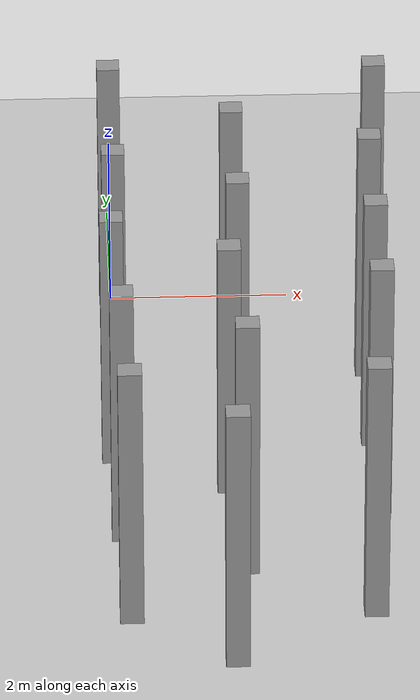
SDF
<sdf version="1.6">
 <world name="default">
  <model name="ground_plane">
   <static>1</static>
   <link name="link">
    <collision name="collision">
     <geometry><plane><normal>0 0 1</normal><size>100 100</size></plane></geometry>
     <surface><friction><ode><mu>100</mu><mu2>50</mu2></ode></friction></surface>
    </collision>
    <visual name="visual">
     <cast_shadows>0</cast_shadows>
     <geometry><plane><normal>0 0 1</normal><size>100 100</size></plane></geometry>
     <material>
      <script><uri>file://media/materials/scripts/gazebo.material</uri><name>Gazebo/Grey</name></script>
     </material>
    </visual>
   </link>
  </model>
  <model name="box_2">
   <link name="link">
    <pose>0 0 1 0 -0 0</pose>
    <inertial>
     <mass>1</mass>
     <inertia><ixx>5.16667</ixx><ixy>0</ixy><ixz>0</ixz><iyy>5.16667</iyy><iyz>0</iyz><izz>5.16667</izz></inertia>
     <pose>0 0 1 0 -0 0</pose>
    </inertial>
    <visual name="ModelPreview_4::link::visual_1">
     <geometry><box><size>0.25 0.25 3</size></box></geometry>
     <material>
      <script><name>Gazebo/Grey</name><uri>file://media/materials/scripts/gazebo.material</uri></script>
      <ambient>0.3 0.3 0.3 1</ambient>
      <diffuse>0.7 0.7 0.7 1</diffuse>
      <specular>0.01 0.01 0.01 1</specular>
      <emissive>0 0 0 1</emissive>
      <shader type="vertex"><normal_map>__default__</normal_map></shader>
     </material>
    </visual>
    <visual name="visual">
     <geometry><box><size>0.25 0.25 3</size></box></geometry>
     <material>
      <script><name>Gazebo/Grey</name><uri>file://media/materials/scripts/gazebo.material</uri></script>
      <ambient>0.3 0.3 0.3 1</ambient>
      <diffuse>0.7 0.7 0.7 1</diffuse>
      <specular>0.01 0.01 0.01 1</specular>
      <emissive>0 0 0 1</emissive>
      <shader type="vertex"><normal_map>__default__</normal_map></shader>
     </material>
    </visual>
    <collision name="collision">
     <geometry><box><size>0.25 0.25 3</size></box></geometry>
     <surface>
      <friction>
       <ode><mu>1</mu><mu2>1</mu2><fdir1>0 0 0</fdir1><slip1>0</slip1><slip2>0</slip2></ode>
       <torsional>
        <coefficient>1</coefficient>
        <patch_radius>0</patch_radius>
        <surface_radius>0</surface_radius>
        <use_patch_radius>1</use_patch_radius>
        <ode><slip>0</slip></ode>
       </torsional>
      </friction>
      <bounce><restitution_coefficient>0</restitution_coefficient><threshold>1e+06</threshold></bounce>
      <contact>
       <collide_without_contact>0</collide_without_contact>
       <collide_without_contact_bitmask>1</collide_without_contact_bitmask>
       <collide_bitmask>1</collide_bitmask>
       <ode>
        <soft_cfm>0</soft_cfm>
        <soft_erp>0.2</soft_erp>
        <kp>1e+13</kp>
        <kd>1</kd>
        <max_vel>0.01</max_vel>
        <min_depth>0</min_depth>
       </ode>
       <bullet>
        <split_impulse>1</split_impulse>
        <split_impulse_penetration_threshold>-0.01</split_impulse_penetration_threshold>
        <soft_cfm>0</soft_cfm>
        <soft_erp>0.2</soft_erp>
        <kp>1e+13</kp>
        <kd>1</kd>
       </bullet>
      </contact>
     </surface>
    </collision>
   </link>
   <static>0</static>
   <pose>0.001306 -0.012782 0.5 0 0 -0.000121</pose>
  </model>
  <model name="box_2_0">
   <link name="link">
    <pose>0 0 1 0 -0 0</pose>
    <inertial>
     <mass>1</mass>
     <inertia><ixx>5.16667</ixx><ixy>0</ixy><ixz>0</ixz><iyy>5.16667</iyy><iyz>0</iyz><izz>5.16667</izz></inertia>
     <pose>0 0 1 0 -0 0</pose>
    </inertial>
    <visual name="ModelPreview_4::link::visual_1">
     <geometry><box><size>0.25 0.25 3</size></box></geometry>
     <material>
      <script><name>Gazebo/Grey</name><uri>file://media/materials/scripts/gazebo.material</uri></script>
      <ambient>0.3 0.3 0.3 1</ambient>
      <diffuse>0.7 0.7 0.7 1</diffuse>
      <specular>0.01 0.01 0.01 1</specular>
      <emissive>0 0 0 1</emissive>
      <shader type="vertex"><normal_map>__default__</normal_map></shader>
     </material>
    </visual>
    <visual name="visual">
     <geometry><box><size>0.25 0.25 3</size></box></geometry>
     <material>
      <script><name>Gazebo/Grey</name><uri>file://media/materials/scripts/gazebo.material</uri></script>
      <ambient>0.3 0.3 0.3 1</ambient>
      <diffuse>0.7 0.7 0.7 1</diffuse>
      <specular>0.01 0.01 0.01 1</specular>
      <emissive>0 0 0 1</emissive>
      <shader type="vertex"><normal_map>__default__</normal_map></shader>
     </material>
    </visual>
    <collision name="collision">
     <geometry><box><size>0.25 0.25 3</size></box></geometry>
     <surface>
      <friction>
       <ode><mu>1</mu><mu2>1</mu2><fdir1>0 0 0</fdir1><slip1>0</slip1><slip2>0</slip2></ode>
       <torsional>
        <coefficient>1</coefficient>
        <patch_radius>0</patch_radius>
        <surface_radius>0</surface_radius>
        <use_patch_radius>1</use_patch_radius>
        <ode><slip>0</slip></ode>
       </torsional>
      </friction>
      <bounce><restitution_coefficient>0</restitution_coefficient><threshold>1e+06</threshold></bounce>
      <contact>
       <collide_without_contact>0</collide_without_contact>
       <collide_without_contact_bitmask>1</collide_without_contact_bitmask>
       <collide_bitmask>1</collide_bitmask>
       <ode>
        <soft_cfm>0</soft_cfm>
        <soft_erp>0.2</soft_erp>
        <kp>1e+13</kp>
        <kd>1</kd>
        <max_vel>0.01</max_vel>
        <min_depth>0</min_depth>
       </ode>
       <bullet>
        <split_impulse>1</split_impulse>
        <split_impulse_penetration_threshold>-0.01</split_impulse_penetration_threshold>
        <soft_cfm>0</soft_cfm>
        <soft_erp>0.2</soft_erp>
        <kp>1e+13</kp>
        <kd>1</kd>
       </bullet>
      </contact>
     </surface>
    </collision>
   </link>
   <static>0</static>
   <pose>0.016184 -1.98397 0.5 -2e-06 -0 -0.000223</pose>
  </model>
  <model name="box_2_clone">
   <link name="link">
    <pose>0 0 1 0 -0 0</pose>
    <inertial>
     <mass>1</mass>
     <inertia><ixx>5.16667</ixx><ixy>0</ixy><ixz>0</ixz><iyy>5.16667</iyy><iyz>0</iyz><izz>5.16667</izz></inertia>
     <pose>0 0 1 0 -0 0</pose>
    </inertial>
    <visual name="ModelPreview_4::link::visual_1">
     <geometry><box><size>0.25 0.25 3</size></box></geometry>
     <material>
      <script><name>Gazebo/Grey</name><uri>file://media/materials/scripts/gazebo.material</uri></script>
      <ambient>0.3 0.3 0.3 1</ambient>
      <diffuse>0.7 0.7 0.7 1</diffuse>
      <specular>0.01 0.01 0.01 1</specular>
      <emissive>0 0 0 1</emissive>
      <shader type="vertex"><normal_map>__default__</normal_map></shader>
     </material>
    </visual>
    <visual name="visual">
     <geometry><box><size>0.25 0.25 3</size></box></geometry>
     <material>
      <script><name>Gazebo/Grey</name><uri>file://media/materials/scripts/gazebo.material</uri></script>
      <ambient>0.3 0.3 0.3 1</ambient>
      <diffuse>0.7 0.7 0.7 1</diffuse>
      <specular>0.01 0.01 0.01 1</specular>
      <emissive>0 0 0 1</emissive>
      <shader type="vertex"><normal_map>__default__</normal_map></shader>
     </material>
    </visual>
    <collision name="collision">
     <geometry><box><size>0.25 0.25 3</size></box></geometry>
     <surface>
      <friction>
       <ode><mu>1</mu><mu2>1</mu2><fdir1>0 0 0</fdir1><slip1>0</slip1><slip2>0</slip2></ode>
       <torsional>
        <coefficient>1</coefficient>
        <patch_radius>0</patch_radius>
        <surface_radius>0</surface_radius>
        <use_patch_radius>1</use_patch_radius>
        <ode><slip>0</slip></ode>
       </torsional>
      </friction>
      <bounce><restitution_coefficient>0</restitution_coefficient><threshold>1e+06</threshold></bounce>
      <contact>
       <collide_without_contact>0</collide_without_contact>
       <collide_without_contact_bitmask>1</collide_without_contact_bitmask>
       <collide_bitmask>1</collide_bitmask>
       <ode>
        <soft_cfm>0</soft_cfm>
        <soft_erp>0.2</soft_erp>
        <kp>1e+13</kp>
        <kd>1</kd>
        <max_vel>0.01</max_vel>
        <min_depth>0</min_depth>
       </ode>
       <bullet>
        <split_impulse>1</split_impulse>
        <split_impulse_penetration_threshold>-0.01</split_impulse_penetration_threshold>
        <soft_cfm>0</soft_cfm>
        <soft_erp>0.2</soft_erp>
        <kp>1e+13</kp>
        <kd>1</kd>
       </bullet>
      </contact>
     </surface>
    </collision>
   </link>
   <static>0</static>
   <pose>-0.030827 -3.47145 0.5 -2e-06 -0 -0.000164</pose>
  </model>
  <model name="box_2_clone_0">
   <link name="link">
    <pose>0 0 1 0 -0 0</pose>
    <inertial>
     <mass>1</mass>
     <inertia><ixx>5.16667</ixx><ixy>0</ixy><ixz>0</ixz><iyy>5.16667</iyy><iyz>0</iyz><izz>5.16667</izz></inertia>
     <pose>0 0 1 0 -0 0</pose>
    </inertial>
    <visual name="ModelPreview_4::link::visual_1">
     <geometry><box><size>0.25 0.25 3</size></box></geometry>
     <material>
      <script><name>Gazebo/Grey</name><uri>file://media/materials/scripts/gazebo.material</uri></script>
      <ambient>0.3 0.3 0.3 1</ambient>
      <diffuse>0.7 0.7 0.7 1</diffuse>
      <specular>0.01 0.01 0.01 1</specular>
      <emissive>0 0 0 1</emissive>
      <shader type="vertex"><normal_map>__default__</normal_map></shader>
     </material>
    </visual>
    <visual name="visual">
     <geometry><box><size>0.25 0.25 3</size></box></geometry>
     <material>
      <script><name>Gazebo/Grey</name><uri>file://media/materials/scripts/gazebo.material</uri></script>
      <ambient>0.3 0.3 0.3 1</ambient>
      <diffuse>0.7 0.7 0.7 1</diffuse>
      <specular>0.01 0.01 0.01 1</specular>
      <emissive>0 0 0 1</emissive>
      <shader type="vertex"><normal_map>__default__</normal_map></shader>
     </material>
    </visual>
    <collision name="collision">
     <geometry><box><size>0.25 0.25 3</size></box></geometry>
     <surface>
      <friction>
       <ode><mu>1</mu><mu2>1</mu2><fdir1>0 0 0</fdir1><slip1>0</slip1><slip2>0</slip2></ode>
       <torsional>
        <coefficient>1</coefficient>
        <patch_radius>0</patch_radius>
        <surface_radius>0</surface_radius>
        <use_patch_radius>1</use_patch_radius>
        <ode><slip>0</slip></ode>
       </torsional>
      </friction>
      <bounce><restitution_coefficient>0</restitution_coefficient><threshold>1e+06</threshold></bounce>
      <contact>
       <collide_without_contact>0</collide_without_contact>
       <collide_without_contact_bitmask>1</collide_without_contact_bitmask>
       <collide_bitmask>1</collide_bitmask>
       <ode>
        <soft_cfm>0</soft_cfm>
        <soft_erp>0.2</soft_erp>
        <kp>1e+13</kp>
        <kd>1</kd>
        <max_vel>0.01</max_vel>
        <min_depth>0</min_depth>
       </ode>
       <bullet>
        <split_impulse>1</split_impulse>
        <split_impulse_penetration_threshold>-0.01</split_impulse_penetration_threshold>
        <soft_cfm>0</soft_cfm>
        <soft_erp>0.2</soft_erp>
        <kp>1e+13</kp>
        <kd>1</kd>
       </bullet>
      </contact>
     </surface>
    </collision>
   </link>
   <static>0</static>
   <pose>0.044164 -5.06379 0.5 2e-06 -1e-06 -0.00013</pose>
  </model>
  <model name="box_2_clone_5">
   <link name="link">
    <pose>0 0 1 0 -0 0</pose>
    <inertial>
     <mass>1</mass>
     <inertia><ixx>5.16667</ixx><ixy>0</ixy><ixz>0</ixz><iyy>5.16667</iyy><iyz>0</iyz><izz>5.16667</izz></inertia>
     <pose>0 0 1 0 -0 0</pose>
    </inertial>
    <visual name="ModelPreview_4::link::visual_1">
     <geometry><box><size>0.25 0.25 3</size></box></geometry>
     <material>
      <script><name>Gazebo/Grey</name><uri>file://media/materials/scripts/gazebo.material</uri></script>
      <ambient>0.3 0.3 0.3 1</ambient>
      <diffuse>0.7 0.7 0.7 1</diffuse>
      <specular>0.01 0.01 0.01 1</specular>
      <emissive>0 0 0 1</emissive>
      <shader type="vertex"><normal_map>__default__</normal_map></shader>
     </material>
    </visual>
    <visual name="visual">
     <geometry><box><size>0.25 0.25 3</size></box></geometry>
     <material>
      <script><name>Gazebo/Grey</name><uri>file://media/materials/scripts/gazebo.material</uri></script>
      <ambient>0.3 0.3 0.3 1</ambient>
      <diffuse>0.7 0.7 0.7 1</diffuse>
      <specular>0.01 0.01 0.01 1</specular>
      <emissive>0 0 0 1</emissive>
      <shader type="vertex"><normal_map>__default__</normal_map></shader>
     </material>
    </visual>
    <collision name="collision">
     <geometry><box><size>0.25 0.25 3</size></box></geometry>
     <surface>
      <friction>
       <ode><mu>1</mu><mu2>1</mu2><fdir1>0 0 0</fdir1><slip1>0</slip1><slip2>0</slip2></ode>
       <torsional>
        <coefficient>1</coefficient>
        <patch_radius>0</patch_radius>
        <surface_radius>0</surface_radius>
        <use_patch_radius>1</use_patch_radius>
        <ode><slip>0</slip></ode>
       </torsional>
      </friction>
      <bounce><restitution_coefficient>0</restitution_coefficient><threshold>1e+06</threshold></bounce>
      <contact>
       <collide_without_contact>0</collide_without_contact>
       <collide_without_contact_bitmask>1</collide_without_contact_bitmask>
       <collide_bitmask>1</collide_bitmask>
       <ode>
        <soft_cfm>0</soft_cfm>
        <soft_erp>0.2</soft_erp>
        <kp>1e+13</kp>
        <kd>1</kd>
        <max_vel>0.01</max_vel>
        <min_depth>0</min_depth>
       </ode>
       <bullet>
        <split_impulse>1</split_impulse>
        <split_impulse_penetration_threshold>-0.01</split_impulse_penetration_threshold>
        <soft_cfm>0</soft_cfm>
        <soft_erp>0.2</soft_erp>
        <kp>1e+13</kp>
        <kd>1</kd>
       </bullet>
      </contact>
     </surface>
    </collision>
   </link>
   <static>0</static>
   <pose>0.096291 -6.6736 0.5 -2e-06 -1e-06 -9.9e-05</pose>
  </model>
  <model name="box_2_clone_1_clone_3">
   <link name="link">
    <pose>0 0 1 0 -0 0</pose>
    <inertial>
     <mass>1</mass>
     <inertia><ixx>5.16667</ixx><ixy>0</ixy><ixz>0</ixz><iyy>5.16667</iyy><iyz>0</iyz><izz>5.16667</izz></inertia>
     <pose>0 0 1 0 -0 0</pose>
    </inertial>
    <visual name="ModelPreview_4::link::visual_1">
     <geometry><box><size>0.25 0.25 3</size></box></geometry>
     <material>
      <script><name>Gazebo/Grey</name><uri>file://media/materials/scripts/gazebo.material</uri></script>
      <ambient>0.3 0.3 0.3 1</ambient>
      <diffuse>0.7 0.7 0.7 1</diffuse>
      <specular>0.01 0.01 0.01 1</specular>
      <emissive>0 0 0 1</emissive>
      <shader type="vertex"><normal_map>__default__</normal_map></shader>
     </material>
    </visual>
    <visual name="visual">
     <geometry><box><size>0.25 0.25 3</size></box></geometry>
     <material>
      <script><name>Gazebo/Grey</name><uri>file://media/materials/scripts/gazebo.material</uri></script>
      <ambient>0.3 0.3 0.3 1</ambient>
      <diffuse>0.7 0.7 0.7 1</diffuse>
      <specular>0.01 0.01 0.01 1</specular>
      <emissive>0 0 0 1</emissive>
      <shader type="vertex"><normal_map>__default__</normal_map></shader>
     </material>
    </visual>
    <collision name="collision">
     <geometry><box><size>0.25 0.25 3</size></box></geometry>
     <surface>
      <friction>
       <ode><mu>1</mu><mu2>1</mu2><fdir1>0 0 0</fdir1><slip1>0</slip1><slip2>0</slip2></ode>
       <torsional>
        <coefficient>1</coefficient>
        <patch_radius>0</patch_radius>
        <surface_radius>0</surface_radius>
        <use_patch_radius>1</use_patch_radius>
        <ode><slip>0</slip></ode>
       </torsional>
      </friction>
      <bounce><restitution_coefficient>0</restitution_coefficient><threshold>1e+06</threshold></bounce>
      <contact>
       <collide_without_contact>0</collide_without_contact>
       <collide_without_contact_bitmask>1</collide_without_contact_bitmask>
       <collide_bitmask>1</collide_bitmask>
       <ode>
        <soft_cfm>0</soft_cfm>
        <soft_erp>0.2</soft_erp>
        <kp>1e+13</kp>
        <kd>1</kd>
        <max_vel>0.01</max_vel>
        <min_depth>0</min_depth>
       </ode>
       <bullet>
        <split_impulse>1</split_impulse>
        <split_impulse_penetration_threshold>-0.01</split_impulse_penetration_threshold>
        <soft_cfm>0</soft_cfm>
        <soft_erp>0.2</soft_erp>
        <kp>1e+13</kp>
        <kd>1</kd>
       </bullet>
      </contact>
     </surface>
    </collision>
   </link>
   <static>0</static>
   <pose>1.33324 -1.05587 0.5 0 -2e-06 -0.000193</pose>
  </model>
  <model name="box_2_clone_1_clone_4">
   <link name="link">
    <pose>0 0 1 0 -0 0</pose>
    <inertial>
     <mass>1</mass>
     <inertia><ixx>5.16667</ixx><ixy>0</ixy><ixz>0</ixz><iyy>5.16667</iyy><iyz>0</iyz><izz>5.16667</izz></inertia>
     <pose>0 0 1 0 -0 0</pose>
    </inertial>
    <visual name="ModelPreview_4::link::visual_1">
     <geometry><box><size>0.25 0.25 3</size></box></geometry>
     <material>
      <script><name>Gazebo/Grey</name><uri>file://media/materials/scripts/gazebo.material</uri></script>
      <ambient>0.3 0.3 0.3 1</ambient>
      <diffuse>0.7 0.7 0.7 1</diffuse>
      <specular>0.01 0.01 0.01 1</specular>
      <emissive>0 0 0 1</emissive>
      <shader type="vertex"><normal_map>__default__</normal_map></shader>
     </material>
    </visual>
    <visual name="visual">
     <geometry><box><size>0.25 0.25 3</size></box></geometry>
     <material>
      <script><name>Gazebo/Grey</name><uri>file://media/materials/scripts/gazebo.material</uri></script>
      <ambient>0.3 0.3 0.3 1</ambient>
      <diffuse>0.7 0.7 0.7 1</diffuse>
      <specular>0.01 0.01 0.01 1</specular>
      <emissive>0 0 0 1</emissive>
      <shader type="vertex"><normal_map>__default__</normal_map></shader>
     </material>
    </visual>
    <collision name="collision">
     <geometry><box><size>0.25 0.25 3</size></box></geometry>
     <surface>
      <friction>
       <ode><mu>1</mu><mu2>1</mu2><fdir1>0 0 0</fdir1><slip1>0</slip1><slip2>0</slip2></ode>
       <torsional>
        <coefficient>1</coefficient>
        <patch_radius>0</patch_radius>
        <surface_radius>0</surface_radius>
        <use_patch_radius>1</use_patch_radius>
        <ode><slip>0</slip></ode>
       </torsional>
      </friction>
      <bounce><restitution_coefficient>0</restitution_coefficient><threshold>1e+06</threshold></bounce>
      <contact>
       <collide_without_contact>0</collide_without_contact>
       <collide_without_contact_bitmask>1</collide_without_contact_bitmask>
       <collide_bitmask>1</collide_bitmask>
       <ode>
        <soft_cfm>0</soft_cfm>
        <soft_erp>0.2</soft_erp>
        <kp>1e+13</kp>
        <kd>1</kd>
        <max_vel>0.01</max_vel>
        <min_depth>0</min_depth>
       </ode>
       <bullet>
        <split_impulse>1</split_impulse>
        <split_impulse_penetration_threshold>-0.01</split_impulse_penetration_threshold>
        <soft_cfm>0</soft_cfm>
        <soft_erp>0.2</soft_erp>
        <kp>1e+13</kp>
        <kd>1</kd>
       </bullet>
      </contact>
     </surface>
    </collision>
   </link>
   <static>0</static>
   <pose>1.34592 -2.67105 0.500001 0 -4e-06 -0.000177</pose>
  </model>
  <model name="box_2_clone_1_clone_5">
   <link name="link">
    <pose>0 0 1 0 -0 0</pose>
    <inertial>
     <mass>1</mass>
     <inertia><ixx>5.16667</ixx><ixy>0</ixy><ixz>0</ixz><iyy>5.16667</iyy><iyz>0</iyz><izz>5.16667</izz></inertia>
     <pose>0 0 1 0 -0 0</pose>
    </inertial>
    <visual name="ModelPreview_4::link::visual_1">
     <geometry><box><size>0.25 0.25 3</size></box></geometry>
     <material>
      <script><name>Gazebo/Grey</name><uri>file://media/materials/scripts/gazebo.material</uri></script>
      <ambient>0.3 0.3 0.3 1</ambient>
      <diffuse>0.7 0.7 0.7 1</diffuse>
      <specular>0.01 0.01 0.01 1</specular>
      <emissive>0 0 0 1</emissive>
      <shader type="vertex"><normal_map>__default__</normal_map></shader>
     </material>
    </visual>
    <visual name="visual">
     <geometry><box><size>0.25 0.25 3</size></box></geometry>
     <material>
      <script><name>Gazebo/Grey</name><uri>file://media/materials/scripts/gazebo.material</uri></script>
      <ambient>0.3 0.3 0.3 1</ambient>
      <diffuse>0.7 0.7 0.7 1</diffuse>
      <specular>0.01 0.01 0.01 1</specular>
      <emissive>0 0 0 1</emissive>
      <shader type="vertex"><normal_map>__default__</normal_map></shader>
     </material>
    </visual>
    <collision name="collision">
     <geometry><box><size>0.25 0.25 3</size></box></geometry>
     <surface>
      <friction>
       <ode><mu>1</mu><mu2>1</mu2><fdir1>0 0 0</fdir1><slip1>0</slip1><slip2>0</slip2></ode>
       <torsional>
        <coefficient>1</coefficient>
        <patch_radius>0</patch_radius>
        <surface_radius>0</surface_radius>
        <use_patch_radius>1</use_patch_radius>
        <ode><slip>0</slip></ode>
       </torsional>
      </friction>
      <bounce><restitution_coefficient>0</restitution_coefficient><threshold>1e+06</threshold></bounce>
      <contact>
       <collide_without_contact>0</collide_without_contact>
       <collide_without_contact_bitmask>1</collide_without_contact_bitmask>
       <collide_bitmask>1</collide_bitmask>
       <ode>
        <soft_cfm>0</soft_cfm>
        <soft_erp>0.2</soft_erp>
        <kp>1e+13</kp>
        <kd>1</kd>
        <max_vel>0.01</max_vel>
        <min_depth>0</min_depth>
       </ode>
       <bullet>
        <split_impulse>1</split_impulse>
        <split_impulse_penetration_threshold>-0.01</split_impulse_penetration_threshold>
        <soft_cfm>0</soft_cfm>
        <soft_erp>0.2</soft_erp>
        <kp>1e+13</kp>
        <kd>1</kd>
       </bullet>
      </contact>
     </surface>
    </collision>
   </link>
   <static>0</static>
   <pose>1.2015 -4.12952 0.500001 4e-06 7e-06 -0.000131</pose>
  </model>
  <model name="box_2_clone_1_clone_6">
   <link name="link">
    <pose>0 0 1 0 -0 0</pose>
    <inertial>
     <mass>1</mass>
     <inertia><ixx>5.16667</ixx><ixy>0</ixy><ixz>0</ixz><iyy>5.16667</iyy><iyz>0</iyz><izz>5.16667</izz></inertia>
     <pose>0 0 1 0 -0 0</pose>
    </inertial>
    <visual name="ModelPreview_4::link::visual_1">
     <geometry><box><size>0.25 0.25 3</size></box></geometry>
     <material>
      <script><name>Gazebo/Grey</name><uri>file://media/materials/scripts/gazebo.material</uri></script>
      <ambient>0.3 0.3 0.3 1</ambient>
      <diffuse>0.7 0.7 0.7 1</diffuse>
      <specular>0.01 0.01 0.01 1</specular>
      <emissive>0 0 0 1</emissive>
      <shader type="vertex"><normal_map>__default__</normal_map></shader>
     </material>
    </visual>
    <visual name="visual">
     <geometry><box><size>0.25 0.25 3</size></box></geometry>
     <material>
      <script><name>Gazebo/Grey</name><uri>file://media/materials/scripts/gazebo.material</uri></script>
      <ambient>0.3 0.3 0.3 1</ambient>
      <diffuse>0.7 0.7 0.7 1</diffuse>
      <specular>0.01 0.01 0.01 1</specular>
      <emissive>0 0 0 1</emissive>
      <shader type="vertex"><normal_map>__default__</normal_map></shader>
     </material>
    </visual>
    <collision name="collision">
     <geometry><box><size>0.25 0.25 3</size></box></geometry>
     <surface>
      <friction>
       <ode><mu>1</mu><mu2>1</mu2><fdir1>0 0 0</fdir1><slip1>0</slip1><slip2>0</slip2></ode>
       <torsional>
        <coefficient>1</coefficient>
        <patch_radius>0</patch_radius>
        <surface_radius>0</surface_radius>
        <use_patch_radius>1</use_patch_radius>
        <ode><slip>0</slip></ode>
       </torsional>
      </friction>
      <bounce><restitution_coefficient>0</restitution_coefficient><threshold>1e+06</threshold></bounce>
      <contact>
       <collide_without_contact>0</collide_without_contact>
       <collide_without_contact_bitmask>1</collide_without_contact_bitmask>
       <collide_bitmask>1</collide_bitmask>
       <ode>
        <soft_cfm>0</soft_cfm>
        <soft_erp>0.2</soft_erp>
        <kp>1e+13</kp>
        <kd>1</kd>
        <max_vel>0.01</max_vel>
        <min_depth>0</min_depth>
       </ode>
       <bullet>
        <split_impulse>1</split_impulse>
        <split_impulse_penetration_threshold>-0.01</split_impulse_penetration_threshold>
        <soft_cfm>0</soft_cfm>
        <soft_erp>0.2</soft_erp>
        <kp>1e+13</kp>
        <kd>1</kd>
       </bullet>
      </contact>
     </surface>
    </collision>
   </link>
   <static>0</static>
   <pose>1.33407 -5.76082 0.500001 -4e-06 4e-06 -0.000178</pose>
  </model>
  <model name="box_2_clone_1_clone_7">
   <link name="link">
    <pose>0 0 1 0 -0 0</pose>
    <inertial>
     <mass>1</mass>
     <inertia><ixx>5.16667</ixx><ixy>0</ixy><ixz>0</ixz><iyy>5.16667</iyy><iyz>0</iyz><izz>5.16667</izz></inertia>
     <pose>0 0 1 0 -0 0</pose>
    </inertial>
    <visual name="ModelPreview_4::link::visual_1">
     <geometry><box><size>0.25 0.25 3</size></box></geometry>
     <material>
      <script><name>Gazebo/Grey</name><uri>file://media/materials/scripts/gazebo.material</uri></script>
      <ambient>0.3 0.3 0.3 1</ambient>
      <diffuse>0.7 0.7 0.7 1</diffuse>
      <specular>0.01 0.01 0.01 1</specular>
      <emissive>0 0 0 1</emissive>
      <shader type="vertex"><normal_map>__default__</normal_map></shader>
     </material>
    </visual>
    <visual name="visual">
     <geometry><box><size>0.25 0.25 3</size></box></geometry>
     <material>
      <script><name>Gazebo/Grey</name><uri>file://media/materials/scripts/gazebo.material</uri></script>
      <ambient>0.3 0.3 0.3 1</ambient>
      <diffuse>0.7 0.7 0.7 1</diffuse>
      <specular>0.01 0.01 0.01 1</specular>
      <emissive>0 0 0 1</emissive>
      <shader type="vertex"><normal_map>__default__</normal_map></shader>
     </material>
    </visual>
    <collision name="collision">
     <geometry><box><size>0.25 0.25 3</size></box></geometry>
     <surface>
      <friction>
       <ode><mu>1</mu><mu2>1</mu2><fdir1>0 0 0</fdir1><slip1>0</slip1><slip2>0</slip2></ode>
       <torsional>
        <coefficient>1</coefficient>
        <patch_radius>0</patch_radius>
        <surface_radius>0</surface_radius>
        <use_patch_radius>1</use_patch_radius>
        <ode><slip>0</slip></ode>
       </torsional>
      </friction>
      <bounce><restitution_coefficient>0</restitution_coefficient><threshold>1e+06</threshold></bounce>
      <contact>
       <collide_without_contact>0</collide_without_contact>
       <collide_without_contact_bitmask>1</collide_without_contact_bitmask>
       <collide_bitmask>1</collide_bitmask>
       <ode>
        <soft_cfm>0</soft_cfm>
        <soft_erp>0.2</soft_erp>
        <kp>1e+13</kp>
        <kd>1</kd>
        <max_vel>0.01</max_vel>
        <min_depth>0</min_depth>
       </ode>
       <bullet>
        <split_impulse>1</split_impulse>
        <split_impulse_penetration_threshold>-0.01</split_impulse_penetration_threshold>
        <soft_cfm>0</soft_cfm>
        <soft_erp>0.2</soft_erp>
        <kp>1e+13</kp>
        <kd>1</kd>
       </bullet>
      </contact>
     </surface>
    </collision>
   </link>
   <static>0</static>
   <pose>1.16884 -7.53019 0.5 0 0 -0.000139</pose>
  </model>
  <model name="box_2_clone_1_clone_9">
   <link name="link">
    <pose>0 0 1 0 -0 0</pose>
    <inertial>
     <mass>1</mass>
     <inertia><ixx>5.16667</ixx><ixy>0</ixy><ixz>0</ixz><iyy>5.16667</iyy><iyz>0</iyz><izz>5.16667</izz></inertia>
     <pose>0 0 1 0 -0 0</pose>
    </inertial>
    <visual name="ModelPreview_4::link::visual_1">
     <geometry><box><size>0.25 0.25 3</size></box></geometry>
     <material>
      <script><name>Gazebo/Grey</name><uri>file://media/materials/scripts/gazebo.material</uri></script>
      <ambient>0.3 0.3 0.3 1</ambient>
      <diffuse>0.7 0.7 0.7 1</diffuse>
      <specular>0.01 0.01 0.01 1</specular>
      <emissive>0 0 0 1</emissive>
      <shader type="vertex"><normal_map>__default__</normal_map></shader>
     </material>
    </visual>
    <visual name="visual">
     <geometry><box><size>0.25 0.25 3</size></box></geometry>
     <material>
      <script><name>Gazebo/Grey</name><uri>file://media/materials/scripts/gazebo.material</uri></script>
      <ambient>0.3 0.3 0.3 1</ambient>
      <diffuse>0.7 0.7 0.7 1</diffuse>
      <specular>0.01 0.01 0.01 1</specular>
      <emissive>0 0 0 1</emissive>
      <shader type="vertex"><normal_map>__default__</normal_map></shader>
     </material>
    </visual>
    <collision name="collision">
     <geometry><box><size>0.25 0.25 3</size></box></geometry>
     <surface>
      <friction>
       <ode><mu>1</mu><mu2>1</mu2><fdir1>0 0 0</fdir1><slip1>0</slip1><slip2>0</slip2></ode>
       <torsional>
        <coefficient>1</coefficient>
        <patch_radius>0</patch_radius>
        <surface_radius>0</surface_radius>
        <use_patch_radius>1</use_patch_radius>
        <ode><slip>0</slip></ode>
       </torsional>
      </friction>
      <bounce><restitution_coefficient>0</restitution_coefficient><threshold>1e+06</threshold></bounce>
      <contact>
       <collide_without_contact>0</collide_without_contact>
       <collide_without_contact_bitmask>1</collide_without_contact_bitmask>
       <collide_bitmask>1</collide_bitmask>
       <ode>
        <soft_cfm>0</soft_cfm>
        <soft_erp>0.2</soft_erp>
        <kp>1e+13</kp>
        <kd>1</kd>
        <max_vel>0.01</max_vel>
        <min_depth>0</min_depth>
       </ode>
       <bullet>
        <split_impulse>1</split_impulse>
        <split_impulse_penetration_threshold>-0.01</split_impulse_penetration_threshold>
        <soft_cfm>0</soft_cfm>
        <soft_erp>0.2</soft_erp>
        <kp>1e+13</kp>
        <kd>1</kd>
       </bullet>
      </contact>
     </surface>
    </collision>
   </link>
   <static>0</static>
   <pose>2.64731 -6.63704 0.5 0 0 -0.000172</pose>
  </model>
  <model name="box_2_clone_1_clone_10">
   <link name="link">
    <pose>0 0 1 0 -0 0</pose>
    <inertial>
     <mass>1</mass>
     <inertia><ixx>5.16667</ixx><ixy>0</ixy><ixz>0</ixz><iyy>5.16667</iyy><iyz>0</iyz><izz>5.16667</izz></inertia>
     <pose>0 0 1 0 -0 0</pose>
    </inertial>
    <visual name="ModelPreview_4::link::visual_1">
     <geometry><box><size>0.25 0.25 3</size></box></geometry>
     <material>
      <script><name>Gazebo/Grey</name><uri>file://media/materials/scripts/gazebo.material</uri></script>
      <ambient>0.3 0.3 0.3 1</ambient>
      <diffuse>0.7 0.7 0.7 1</diffuse>
      <specular>0.01 0.01 0.01 1</specular>
      <emissive>0 0 0 1</emissive>
      <shader type="vertex"><normal_map>__default__</normal_map></shader>
     </material>
    </visual>
    <visual name="visual">
     <geometry><box><size>0.25 0.25 3</size></box></geometry>
     <material>
      <script><name>Gazebo/Grey</name><uri>file://media/materials/scripts/gazebo.material</uri></script>
      <ambient>0.3 0.3 0.3 1</ambient>
      <diffuse>0.7 0.7 0.7 1</diffuse>
      <specular>0.01 0.01 0.01 1</specular>
      <emissive>0 0 0 1</emissive>
      <shader type="vertex"><normal_map>__default__</normal_map></shader>
     </material>
    </visual>
    <collision name="collision">
     <geometry><box><size>0.25 0.25 3</size></box></geometry>
     <surface>
      <friction>
       <ode><mu>1</mu><mu2>1</mu2><fdir1>0 0 0</fdir1><slip1>0</slip1><slip2>0</slip2></ode>
       <torsional>
        <coefficient>1</coefficient>
        <patch_radius>0</patch_radius>
        <surface_radius>0</surface_radius>
        <use_patch_radius>1</use_patch_radius>
        <ode><slip>0</slip></ode>
       </torsional>
      </friction>
      <bounce><restitution_coefficient>0</restitution_coefficient><threshold>1e+06</threshold></bounce>
      <contact>
       <collide_without_contact>0</collide_without_contact>
       <collide_without_contact_bitmask>1</collide_without_contact_bitmask>
       <collide_bitmask>1</collide_bitmask>
       <ode>
        <soft_cfm>0</soft_cfm>
        <soft_erp>0.2</soft_erp>
        <kp>1e+13</kp>
        <kd>1</kd>
        <max_vel>0.01</max_vel>
        <min_depth>0</min_depth>
       </ode>
       <bullet>
        <split_impulse>1</split_impulse>
        <split_impulse_penetration_threshold>-0.01</split_impulse_penetration_threshold>
        <soft_cfm>0</soft_cfm>
        <soft_erp>0.2</soft_erp>
        <kp>1e+13</kp>
        <kd>1</kd>
       </bullet>
      </contact>
     </surface>
    </collision>
   </link>
   <static>0</static>
   <pose>2.79133 -4.61918 0.5 -1e-06 -0 -0.000156</pose>
  </model>
  <model name="box_2_clone_1_clone_11">
   <link name="link">
    <pose>0 0 1 0 -0 0</pose>
    <inertial>
     <mass>1</mass>
     <inertia><ixx>5.16667</ixx><ixy>0</ixy><ixz>0</ixz><iyy>5.16667</iyy><iyz>0</iyz><izz>5.16667</izz></inertia>
     <pose>0 0 1 0 -0 0</pose>
    </inertial>
    <visual name="ModelPreview_4::link::visual_1">
     <geometry><box><size>0.25 0.25 3</size></box></geometry>
     <material>
      <script><name>Gazebo/Grey</name><uri>file://media/materials/scripts/gazebo.material</uri></script>
      <ambient>0.3 0.3 0.3 1</ambient>
      <diffuse>0.7 0.7 0.7 1</diffuse>
      <specular>0.01 0.01 0.01 1</specular>
      <emissive>0 0 0 1</emissive>
      <shader type="vertex"><normal_map>__default__</normal_map></shader>
     </material>
    </visual>
    <visual name="visual">
     <geometry><box><size>0.25 0.25 3</size></box></geometry>
     <material>
      <script><name>Gazebo/Grey</name><uri>file://media/materials/scripts/gazebo.material</uri></script>
      <ambient>0.3 0.3 0.3 1</ambient>
      <diffuse>0.7 0.7 0.7 1</diffuse>
      <specular>0.01 0.01 0.01 1</specular>
      <emissive>0 0 0 1</emissive>
      <shader type="vertex"><normal_map>__default__</normal_map></shader>
     </material>
    </visual>
    <collision name="collision">
     <geometry><box><size>0.25 0.25 3</size></box></geometry>
     <surface>
      <friction>
       <ode><mu>1</mu><mu2>1</mu2><fdir1>0 0 0</fdir1><slip1>0</slip1><slip2>0</slip2></ode>
       <torsional>
        <coefficient>1</coefficient>
        <patch_radius>0</patch_radius>
        <surface_radius>0</surface_radius>
        <use_patch_radius>1</use_patch_radius>
        <ode><slip>0</slip></ode>
       </torsional>
      </friction>
      <bounce><restitution_coefficient>0</restitution_coefficient><threshold>1e+06</threshold></bounce>
      <contact>
       <collide_without_contact>0</collide_without_contact>
       <collide_without_contact_bitmask>1</collide_without_contact_bitmask>
       <collide_bitmask>1</collide_bitmask>
       <ode>
        <soft_cfm>0</soft_cfm>
        <soft_erp>0.2</soft_erp>
        <kp>1e+13</kp>
        <kd>1</kd>
        <max_vel>0.01</max_vel>
        <min_depth>0</min_depth>
       </ode>
       <bullet>
        <split_impulse>1</split_impulse>
        <split_impulse_penetration_threshold>-0.01</split_impulse_penetration_threshold>
        <soft_cfm>0</soft_cfm>
        <soft_erp>0.2</soft_erp>
        <kp>1e+13</kp>
        <kd>1</kd>
       </bullet>
      </contact>
     </surface>
    </collision>
   </link>
   <static>0</static>
   <pose>2.80389 -3.21245 0.5 3e-06 0 -0.000157</pose>
  </model>
  <model name="box_2_clone_1_clone_12">
   <link name="link">
    <pose>0 0 1 0 -0 0</pose>
    <inertial>
     <mass>1</mass>
     <inertia><ixx>5.16667</ixx><ixy>0</ixy><ixz>0</ixz><iyy>5.16667</iyy><iyz>0</iyz><izz>5.16667</izz></inertia>
     <pose>0 0 1 0 -0 0</pose>
    </inertial>
    <visual name="ModelPreview_4::link::visual_1">
     <geometry><box><size>0.25 0.25 3</size></box></geometry>
     <material>
      <script><name>Gazebo/Grey</name><uri>file://media/materials/scripts/gazebo.material</uri></script>
      <ambient>0.3 0.3 0.3 1</ambient>
      <diffuse>0.7 0.7 0.7 1</diffuse>
      <specular>0.01 0.01 0.01 1</specular>
      <emissive>0 0 0 1</emissive>
      <shader type="vertex"><normal_map>__default__</normal_map></shader>
     </material>
    </visual>
    <visual name="visual">
     <geometry><box><size>0.25 0.25 3</size></box></geometry>
     <material>
      <script><name>Gazebo/Grey</name><uri>file://media/materials/scripts/gazebo.material</uri></script>
      <ambient>0.3 0.3 0.3 1</ambient>
      <diffuse>0.7 0.7 0.7 1</diffuse>
      <specular>0.01 0.01 0.01 1</specular>
      <emissive>0 0 0 1</emissive>
      <shader type="vertex"><normal_map>__default__</normal_map></shader>
     </material>
    </visual>
    <collision name="collision">
     <geometry><box><size>0.25 0.25 3</size></box></geometry>
     <surface>
      <friction>
       <ode><mu>1</mu><mu2>1</mu2><fdir1>0 0 0</fdir1><slip1>0</slip1><slip2>0</slip2></ode>
       <torsional>
        <coefficient>1</coefficient>
        <patch_radius>0</patch_radius>
        <surface_radius>0</surface_radius>
        <use_patch_radius>1</use_patch_radius>
        <ode><slip>0</slip></ode>
       </torsional>
      </friction>
      <bounce><restitution_coefficient>0</restitution_coefficient><threshold>1e+06</threshold></bounce>
      <contact>
       <collide_without_contact>0</collide_without_contact>
       <collide_without_contact_bitmask>1</collide_without_contact_bitmask>
       <collide_bitmask>1</collide_bitmask>
       <ode>
        <soft_cfm>0</soft_cfm>
        <soft_erp>0.2</soft_erp>
        <kp>1e+13</kp>
        <kd>1</kd>
        <max_vel>0.01</max_vel>
        <min_depth>0</min_depth>
       </ode>
       <bullet>
        <split_impulse>1</split_impulse>
        <split_impulse_penetration_threshold>-0.01</split_impulse_penetration_threshold>
        <soft_cfm>0</soft_cfm>
        <soft_erp>0.2</soft_erp>
        <kp>1e+13</kp>
        <kd>1</kd>
       </bullet>
      </contact>
     </surface>
    </collision>
   </link>
   <static>0</static>
   <pose>2.81787 -1.72452 0.5 0 0 -0.00019</pose>
  </model>
  <model name="box_2_clone_1_clone_13">
   <link name="link">
    <pose>0 0 1 0 -0 0</pose>
    <inertial>
     <mass>1</mass>
     <inertia><ixx>5.16667</ixx><ixy>0</ixy><ixz>0</ixz><iyy>5.16667</iyy><iyz>0</iyz><izz>5.16667</izz></inertia>
     <pose>0 0 1 0 -0 0</pose>
    </inertial>
    <visual name="ModelPreview_4::link::visual_1">
     <geometry><box><size>0.25 0.25 3</size></box></geometry>
     <material>
      <script><name>Gazebo/Grey</name><uri>file://media/materials/scripts/gazebo.material</uri></script>
      <ambient>0.3 0.3 0.3 1</ambient>
      <diffuse>0.7 0.7 0.7 1</diffuse>
      <specular>0.01 0.01 0.01 1</specular>
      <emissive>0 0 0 1</emissive>
      <shader type="vertex"><normal_map>__default__</normal_map></shader>
     </material>
    </visual>
    <visual name="visual">
     <geometry><box><size>0.25 0.25 3</size></box></geometry>
     <material>
      <script><name>Gazebo/Grey</name><uri>file://media/materials/scripts/gazebo.material</uri></script>
      <ambient>0.3 0.3 0.3 1</ambient>
      <diffuse>0.7 0.7 0.7 1</diffuse>
      <specular>0.01 0.01 0.01 1</specular>
      <emissive>0 0 0 1</emissive>
      <shader type="vertex"><normal_map>__default__</normal_map></shader>
     </material>
    </visual>
    <collision name="collision">
     <geometry><box><size>0.25 0.25 3</size></box></geometry>
     <surface>
      <friction>
       <ode><mu>1</mu><mu2>1</mu2><fdir1>0 0 0</fdir1><slip1>0</slip1><slip2>0</slip2></ode>
       <torsional>
        <coefficient>1</coefficient>
        <patch_radius>0</patch_radius>
        <surface_radius>0</surface_radius>
        <use_patch_radius>1</use_patch_radius>
        <ode><slip>0</slip></ode>
       </torsional>
      </friction>
      <bounce><restitution_coefficient>0</restitution_coefficient><threshold>1e+06</threshold></bounce>
      <contact>
       <collide_without_contact>0</collide_without_contact>
       <collide_without_contact_bitmask>1</collide_without_contact_bitmask>
       <collide_bitmask>1</collide_bitmask>
       <ode>
        <soft_cfm>0</soft_cfm>
        <soft_erp>0.2</soft_erp>
        <kp>1e+13</kp>
        <kd>1</kd>
        <max_vel>0.01</max_vel>
        <min_depth>0</min_depth>
       </ode>
       <bullet>
        <split_impulse>1</split_impulse>
        <split_impulse_penetration_threshold>-0.01</split_impulse_penetration_threshold>
        <soft_cfm>0</soft_cfm>
        <soft_erp>0.2</soft_erp>
        <kp>1e+13</kp>
        <kd>1</kd>
       </bullet>
      </contact>
     </surface>
    </collision>
   </link>
   <static>0</static>
   <pose>2.95913 -0.017909 0.500001 1e-06 1e-05 -0.000171</pose>
  </model>
 </world>
</sdf>
